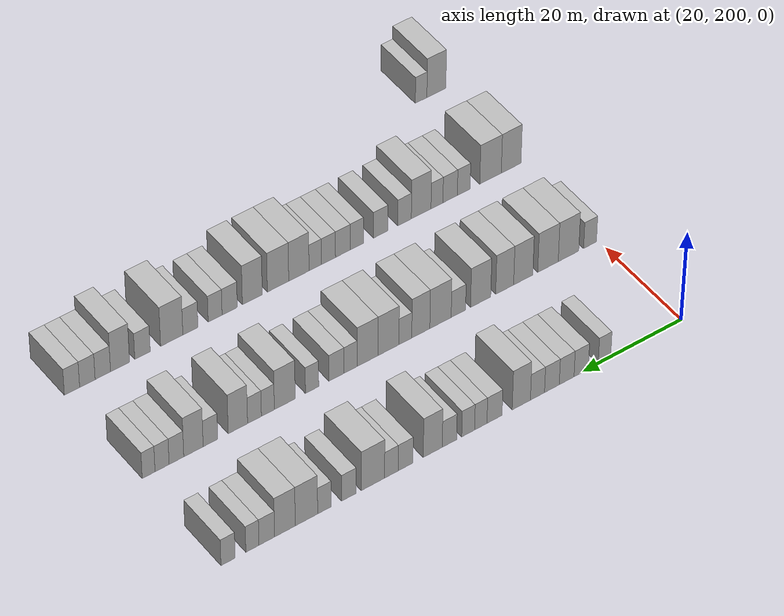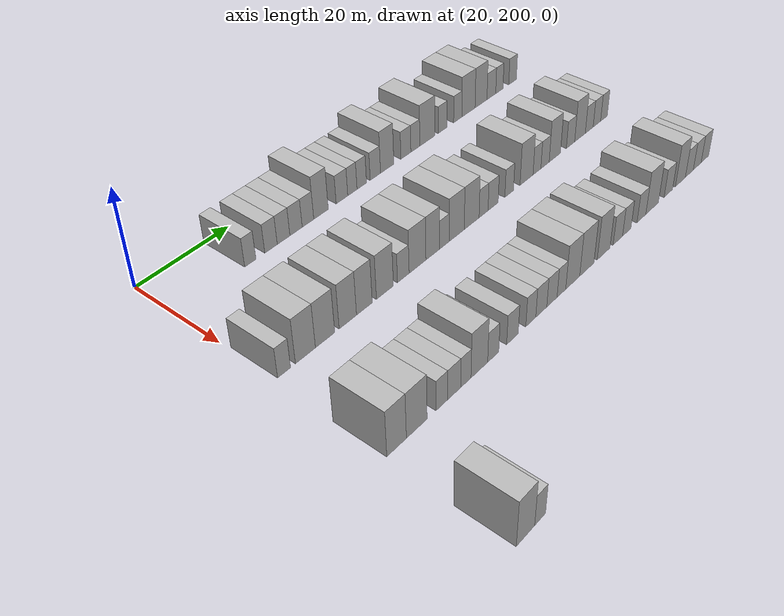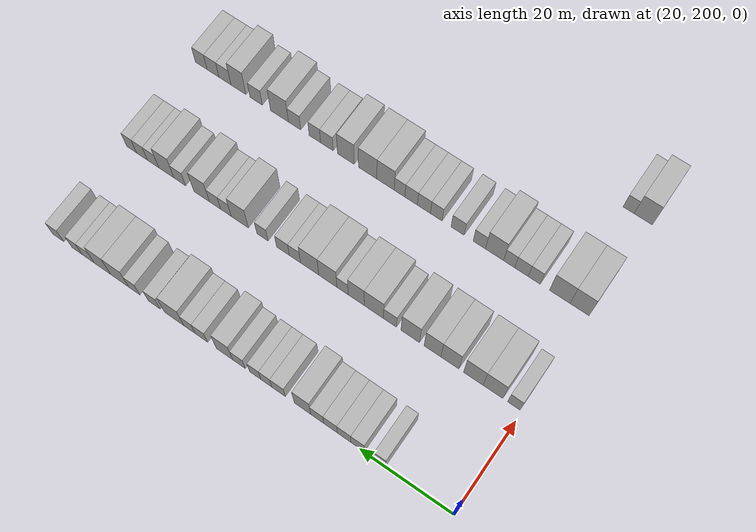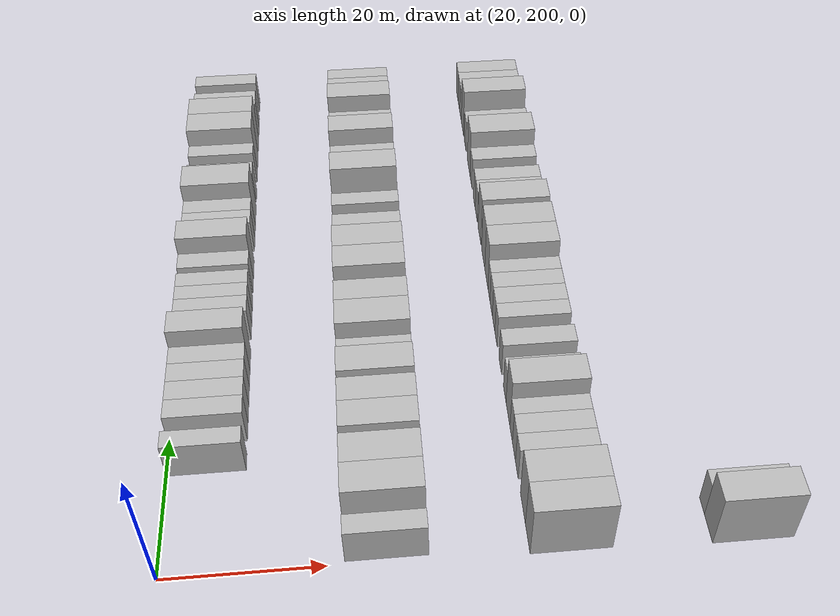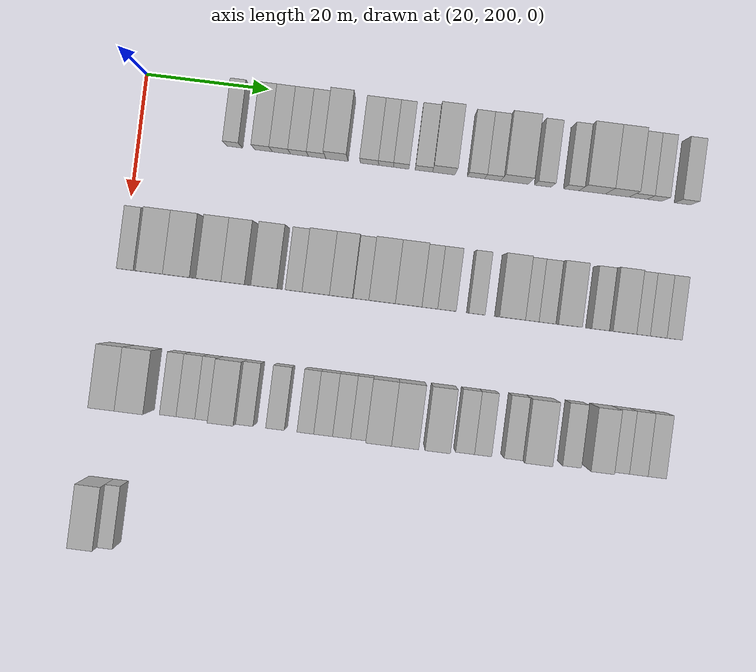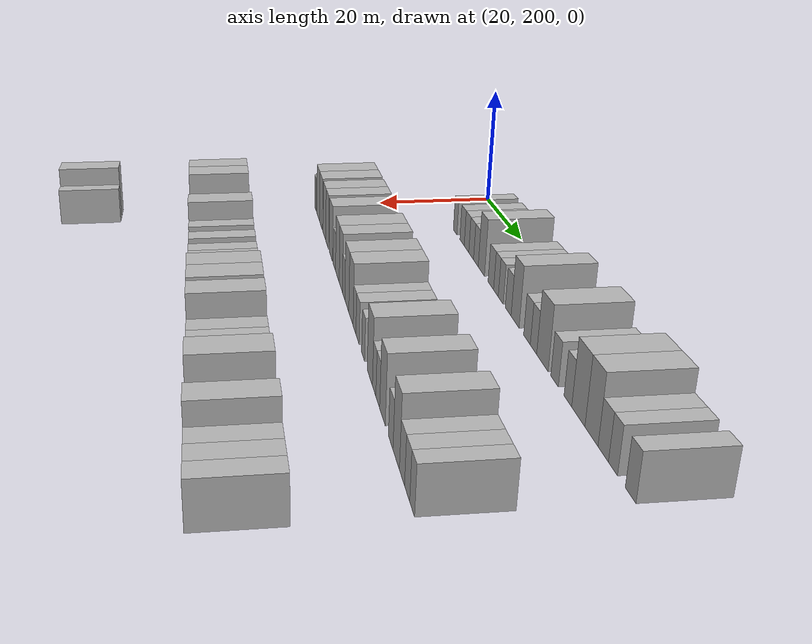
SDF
<sdf version="1.6">
 <world name="default">
  <model name="building_140">
   <static>1</static>
   <pose>25.0000 215.7087 0 0.000000 0.000000 0.000000</pose>
   <link name="link">
    <pose>0 0 3.00 0 0 0</pose>
    <collision name="collision"><geometry><box><size>10.0000 2.5268 6.0000</size></box></geometry></collision>
    <visual name="visual">
     <cast_shadows>0</cast_shadows>
     <geometry><box><size>10.0000 2.5268 6.0000</size></box></geometry>
     <material>
      <script>
       <uri>model://HANNAS_wall/materials/scripts</uri>
       <uri>model://HANNAS_wall/materials/textures</uri>
       <name>vrc/HANNAS_wall</name>
      </script>
     </material>
    </visual>
   </link>
  </model>
  <model name="building_141">
   <static>1</static>
   <pose>25.0000 220.4124 0 0.000000 0.000000 0.000000</pose>
   <link name="link">
    <pose>0 0 3.00 0 0 0</pose>
    <collision name="collision"><geometry><box><size>10.0000 2.8806 6.0000</size></box></geometry></collision>
    <visual name="visual">
     <cast_shadows>0</cast_shadows>
     <geometry><box><size>10.0000 2.8806 6.0000</size></box></geometry>
     <material>
      <script>
       <uri>model://HANNAS_wall/materials/scripts</uri>
       <uri>model://HANNAS_wall/materials/textures</uri>
       <name>vrc/HANNAS_wall</name>
      </script>
     </material>
    </visual>
   </link>
  </model>
  <model name="building_142">
   <static>1</static>
   <pose>25.0000 223.3369 0 0.000000 0.000000 0.000000</pose>
   <link name="link">
    <pose>0 0 3.00 0 0 0</pose>
    <collision name="collision"><geometry><box><size>10.0000 2.9684 6.0000</size></box></geometry></collision>
    <visual name="visual">
     <cast_shadows>0</cast_shadows>
     <geometry><box><size>10.0000 2.9684 6.0000</size></box></geometry>
     <material>
      <script>
       <uri>model://HANNAS_wall/materials/scripts</uri>
       <uri>model://HANNAS_wall/materials/textures</uri>
       <name>vrc/HANNAS_wall</name>
      </script>
     </material>
    </visual>
   </link>
  </model>
  <model name="building_143">
   <static>1</static>
   <pose>25.0000 226.2983 0 0.000000 0.000000 0.000000</pose>
   <link name="link">
    <pose>0 0 3.00 0 0 0</pose>
    <collision name="collision"><geometry><box><size>10.0000 2.9544 6.0000</size></box></geometry></collision>
    <visual name="visual">
     <cast_shadows>0</cast_shadows>
     <geometry><box><size>10.0000 2.9544 6.0000</size></box></geometry>
     <material>
      <script>
       <uri>model://HANNAS_wall/materials/scripts</uri>
       <uri>model://HANNAS_wall/materials/textures</uri>
       <name>vrc/HANNAS_wall</name>
      </script>
     </material>
    </visual>
   </link>
  </model>
  <model name="building_144">
   <static>1</static>
   <pose>25.0000 229.1850 0 0.000000 0.000000 0.000000</pose>
   <link name="link">
    <pose>0 0 3.00 0 0 0</pose>
    <collision name="collision"><geometry><box><size>10.0000 2.8190 6.0000</size></box></geometry></collision>
    <visual name="visual">
     <cast_shadows>0</cast_shadows>
     <geometry><box><size>10.0000 2.8190 6.0000</size></box></geometry>
     <material>
      <script>
       <uri>model://HANNAS_wall/materials/scripts</uri>
       <uri>model://HANNAS_wall/materials/textures</uri>
       <name>vrc/HANNAS_wall</name>
      </script>
     </material>
    </visual>
   </link>
  </model>
  <model name="building_145">
   <static>1</static>
   <pose>25.0000 232.4113 0 0.000000 0.000000 0.000000</pose>
   <link name="link">
    <pose>0 0 4.50 0 0 0</pose>
    <collision name="collision"><geometry><box><size>10.0000 3.6335 9.0000</size></box></geometry></collision>
    <visual name="visual">
     <cast_shadows>0</cast_shadows>
     <geometry><box><size>10.0000 3.6335 9.0000</size></box></geometry>
     <material>
      <script>
       <uri>model://HANNAS_wall/materials/scripts</uri>
       <uri>model://HANNAS_wall/materials/textures</uri>
       <name>vrc/HANNAS_wall</name>
      </script>
     </material>
    </visual>
   </link>
  </model>
  <model name="building_146">
   <static>1</static>
   <pose>25.0000 237.7246 0 0.000000 0.000000 0.000000</pose>
   <link name="link">
    <pose>0 0 3.00 0 0 0</pose>
    <collision name="collision"><geometry><box><size>10.0000 2.9931 6.0000</size></box></geometry></collision>
    <visual name="visual">
     <cast_shadows>0</cast_shadows>
     <geometry><box><size>10.0000 2.9931 6.0000</size></box></geometry>
     <material>
      <script>
       <uri>model://HANNAS_wall/materials/scripts</uri>
       <uri>model://HANNAS_wall/materials/textures</uri>
       <name>vrc/HANNAS_wall</name>
      </script>
     </material>
    </visual>
   </link>
  </model>
  <model name="building_147">
   <static>1</static>
   <pose>25.0000 240.4412 0 0.000000 0.000000 0.000000</pose>
   <link name="link">
    <pose>0 0 3.00 0 0 0</pose>
    <collision name="collision"><geometry><box><size>10.0000 2.4401 6.0000</size></box></geometry></collision>
    <visual name="visual">
     <cast_shadows>0</cast_shadows>
     <geometry><box><size>10.0000 2.4401 6.0000</size></box></geometry>
     <material>
      <script>
       <uri>model://HANNAS_wall/materials/scripts</uri>
       <uri>model://HANNAS_wall/materials/textures</uri>
       <name>vrc/HANNAS_wall</name>
      </script>
     </material>
    </visual>
   </link>
  </model>
  <model name="building_148">
   <static>1</static>
   <pose>25.0000 242.9227 0 0.000000 0.000000 0.000000</pose>
   <link name="link">
    <pose>0 0 3.00 0 0 0</pose>
    <collision name="collision"><geometry><box><size>10.0000 2.5229 6.0000</size></box></geometry></collision>
    <visual name="visual">
     <cast_shadows>0</cast_shadows>
     <geometry><box><size>10.0000 2.5229 6.0000</size></box></geometry>
     <material>
      <script>
       <uri>model://HANNAS_wall/materials/scripts</uri>
       <uri>model://HANNAS_wall/materials/textures</uri>
       <name>vrc/HANNAS_wall</name>
      </script>
     </material>
    </visual>
   </link>
  </model>
  <model name="building_149">
   <static>1</static>
   <pose>25.0000 246.5963 0 0.000000 0.000000 0.000000</pose>
   <link name="link">
    <pose>0 0 3.00 0 0 0</pose>
    <collision name="collision"><geometry><box><size>10.0000 2.8243 6.0000</size></box></geometry></collision>
    <visual name="visual">
     <cast_shadows>0</cast_shadows>
     <geometry><box><size>10.0000 2.8243 6.0000</size></box></geometry>
     <material>
      <script>
       <uri>model://HANNAS_wall/materials/scripts</uri>
       <uri>model://HANNAS_wall/materials/textures</uri>
       <name>vrc/HANNAS_wall</name>
      </script>
     </material>
    </visual>
   </link>
  </model>
  <model name="building_150">
   <static>1</static>
   <pose>25.0000 249.8636 0 0.000000 0.000000 0.000000</pose>
   <link name="link">
    <pose>0 0 4.50 0 0 0</pose>
    <collision name="collision"><geometry><box><size>10.0000 3.7104 9.0000</size></box></geometry></collision>
    <visual name="visual">
     <cast_shadows>0</cast_shadows>
     <geometry><box><size>10.0000 3.7104 9.0000</size></box></geometry>
     <material>
      <script>
       <uri>model://HANNAS_wall/materials/scripts</uri>
       <uri>model://HANNAS_wall/materials/textures</uri>
       <name>vrc/HANNAS_wall</name>
      </script>
     </material>
    </visual>
   </link>
  </model>
  <model name="building_151">
   <static>1</static>
   <pose>25.0000 255.1486 0 0.000000 0.000000 0.000000</pose>
   <link name="link">
    <pose>0 0 3.00 0 0 0</pose>
    <collision name="collision"><geometry><box><size>10.0000 2.8596 6.0000</size></box></geometry></collision>
    <visual name="visual">
     <cast_shadows>0</cast_shadows>
     <geometry><box><size>10.0000 2.8596 6.0000</size></box></geometry>
     <material>
      <script>
       <uri>model://HANNAS_wall/materials/scripts</uri>
       <uri>model://HANNAS_wall/materials/textures</uri>
       <name>vrc/HANNAS_wall</name>
      </script>
     </material>
    </visual>
   </link>
  </model>
  <model name="building_152">
   <static>1</static>
   <pose>25.0000 257.8966 0 0.000000 0.000000 0.000000</pose>
   <link name="link">
    <pose>0 0 3.00 0 0 0</pose>
    <collision name="collision"><geometry><box><size>10.0000 2.6362 6.0000</size></box></geometry></collision>
    <visual name="visual">
     <cast_shadows>0</cast_shadows>
     <geometry><box><size>10.0000 2.6362 6.0000</size></box></geometry>
     <material>
      <script>
       <uri>model://HANNAS_wall/materials/scripts</uri>
       <uri>model://HANNAS_wall/materials/textures</uri>
       <name>vrc/HANNAS_wall</name>
      </script>
     </material>
    </visual>
   </link>
  </model>
  <model name="building_153">
   <static>1</static>
   <pose>25.0000 261.4576 0 0.000000 0.000000 0.000000</pose>
   <link name="link">
    <pose>0 0 4.50 0 0 0</pose>
    <collision name="collision"><geometry><box><size>10.0000 4.4859 9.0000</size></box></geometry></collision>
    <visual name="visual">
     <cast_shadows>0</cast_shadows>
     <geometry><box><size>10.0000 4.4859 9.0000</size></box></geometry>
     <material>
      <script>
       <uri>model://HANNAS_wall/materials/scripts</uri>
       <uri>model://HANNAS_wall/materials/textures</uri>
       <name>vrc/HANNAS_wall</name>
      </script>
     </material>
    </visual>
   </link>
  </model>
  <model name="building_154">
   <static>1</static>
   <pose>25.0000 266.0856 0 0.000000 0.000000 0.000000</pose>
   <link name="link">
    <pose>0 0 3.00 0 0 0</pose>
    <collision name="collision"><geometry><box><size>10.0000 2.7699 6.0000</size></box></geometry></collision>
    <visual name="visual">
     <cast_shadows>0</cast_shadows>
     <geometry><box><size>10.0000 2.7699 6.0000</size></box></geometry>
     <material>
      <script>
       <uri>model://HANNAS_wall/materials/scripts</uri>
       <uri>model://HANNAS_wall/materials/textures</uri>
       <name>vrc/HANNAS_wall</name>
      </script>
     </material>
    </visual>
   </link>
  </model>
  <model name="building_155">
   <static>1</static>
   <pose>25.0000 270.7630 0 0.000000 0.000000 0.000000</pose>
   <link name="link">
    <pose>0 0 3.00 0 0 0</pose>
    <collision name="collision"><geometry><box><size>10.0000 2.5850 6.0000</size></box></geometry></collision>
    <visual name="visual">
     <cast_shadows>0</cast_shadows>
     <geometry><box><size>10.0000 2.5850 6.0000</size></box></geometry>
     <material>
      <script>
       <uri>model://HANNAS_wall/materials/scripts</uri>
       <uri>model://HANNAS_wall/materials/textures</uri>
       <name>vrc/HANNAS_wall</name>
      </script>
     </material>
    </visual>
   </link>
  </model>
  <model name="building_156">
   <static>1</static>
   <pose>25.0000 274.1829 0 0.000000 0.000000 0.000000</pose>
   <link name="link">
    <pose>0 0 4.50 0 0 0</pose>
    <collision name="collision"><geometry><box><size>10.0000 4.2548 9.0000</size></box></geometry></collision>
    <visual name="visual">
     <cast_shadows>0</cast_shadows>
     <geometry><box><size>10.0000 4.2548 9.0000</size></box></geometry>
     <material>
      <script>
       <uri>model://HANNAS_wall/materials/scripts</uri>
       <uri>model://HANNAS_wall/materials/textures</uri>
       <name>vrc/HANNAS_wall</name>
      </script>
     </material>
    </visual>
   </link>
  </model>
  <model name="building_157">
   <static>1</static>
   <pose>25.0000 278.2666 0 0.000000 0.000000 0.000000</pose>
   <link name="link">
    <pose>0 0 4.50 0 0 0</pose>
    <collision name="collision"><geometry><box><size>10.0000 3.9126 9.0000</size></box></geometry></collision>
    <visual name="visual">
     <cast_shadows>0</cast_shadows>
     <geometry><box><size>10.0000 3.9126 9.0000</size></box></geometry>
     <material>
      <script>
       <uri>model://HANNAS_wall/materials/scripts</uri>
       <uri>model://HANNAS_wall/materials/textures</uri>
       <name>vrc/HANNAS_wall</name>
      </script>
     </material>
    </visual>
   </link>
  </model>
  <model name="building_158">
   <static>1</static>
   <pose>25.0000 281.6928 0 0.000000 0.000000 0.000000</pose>
   <link name="link">
    <pose>0 0 3.00 0 0 0</pose>
    <collision name="collision"><geometry><box><size>10.0000 2.9397 6.0000</size></box></geometry></collision>
    <visual name="visual">
     <cast_shadows>0</cast_shadows>
     <geometry><box><size>10.0000 2.9397 6.0000</size></box></geometry>
     <material>
      <script>
       <uri>model://HANNAS_wall/materials/scripts</uri>
       <uri>model://HANNAS_wall/materials/textures</uri>
       <name>vrc/HANNAS_wall</name>
      </script>
     </material>
    </visual>
   </link>
  </model>
  <model name="building_159">
   <static>1</static>
   <pose>25.0000 284.3924 0 0.000000 0.000000 0.000000</pose>
   <link name="link">
    <pose>0 0 3.00 0 0 0</pose>
    <collision name="collision"><geometry><box><size>10.0000 2.4595 6.0000</size></box></geometry></collision>
    <visual name="visual">
     <cast_shadows>0</cast_shadows>
     <geometry><box><size>10.0000 2.4595 6.0000</size></box></geometry>
     <material>
      <script>
       <uri>model://HANNAS_wall/materials/scripts</uri>
       <uri>model://HANNAS_wall/materials/textures</uri>
       <name>vrc/HANNAS_wall</name>
      </script>
     </material>
    </visual>
   </link>
  </model>
  <model name="building_160">
   <static>1</static>
   <pose>25.0000 288.9512 0 0.000000 0.000000 0.000000</pose>
   <link name="link">
    <pose>0 0 3.00 0 0 0</pose>
    <collision name="collision"><geometry><box><size>10.0000 2.6580 6.0000</size></box></geometry></collision>
    <visual name="visual">
     <cast_shadows>0</cast_shadows>
     <geometry><box><size>10.0000 2.6580 6.0000</size></box></geometry>
     <material>
      <script>
       <uri>model://HANNAS_wall/materials/scripts</uri>
       <uri>model://HANNAS_wall/materials/textures</uri>
       <name>vrc/HANNAS_wall</name>
      </script>
     </material>
    </visual>
   </link>
  </model>
  <model name="building_323">
   <static>1</static>
   <pose>47.0000 201.7615 0 0.000000 0.000000 0.000000</pose>
   <link name="link">
    <pose>0 0 3.00 0 0 0</pose>
    <collision name="collision"><geometry><box><size>10.0000 2.6622 6.0000</size></box></geometry></collision>
    <visual name="visual">
     <cast_shadows>0</cast_shadows>
     <geometry><box><size>10.0000 2.6622 6.0000</size></box></geometry>
     <material>
      <script>
       <uri>model://HANNAS_wall/materials/scripts</uri>
       <uri>model://HANNAS_wall/materials/textures</uri>
       <name>vrc/HANNAS_wall</name>
      </script>
     </material>
    </visual>
   </link>
  </model>
  <model name="building_324">
   <static>1</static>
   <pose>47.0000 206.2104 0 0.000000 0.000000 0.000000</pose>
   <link name="link">
    <pose>0 0 4.50 0 0 0</pose>
    <collision name="collision"><geometry><box><size>10.0000 4.2357 9.0000</size></box></geometry></collision>
    <visual name="visual">
     <cast_shadows>0</cast_shadows>
     <geometry><box><size>10.0000 4.2357 9.0000</size></box></geometry>
     <material>
      <script>
       <uri>model://HANNAS_wall/materials/scripts</uri>
       <uri>model://HANNAS_wall/materials/textures</uri>
       <name>vrc/HANNAS_wall</name>
      </script>
     </material>
    </visual>
   </link>
  </model>
  <model name="building_325">
   <static>1</static>
   <pose>47.0000 210.4332 0 0.000000 0.000000 0.000000</pose>
   <link name="link">
    <pose>0 0 4.50 0 0 0</pose>
    <collision name="collision"><geometry><box><size>10.0000 4.2099 9.0000</size></box></geometry></collision>
    <visual name="visual">
     <cast_shadows>0</cast_shadows>
     <geometry><box><size>10.0000 4.2099 9.0000</size></box></geometry>
     <material>
      <script>
       <uri>model://HANNAS_wall/materials/scripts</uri>
       <uri>model://HANNAS_wall/materials/textures</uri>
       <name>vrc/HANNAS_wall</name>
      </script>
     </material>
    </visual>
   </link>
  </model>
  <model name="building_326">
   <static>1</static>
   <pose>47.0000 215.5032 0 0.000000 0.000000 0.000000</pose>
   <link name="link">
    <pose>0 0 4.50 0 0 0</pose>
    <collision name="collision"><geometry><box><size>10.0000 3.9301 9.0000</size></box></geometry></collision>
    <visual name="visual">
     <cast_shadows>0</cast_shadows>
     <geometry><box><size>10.0000 3.9301 9.0000</size></box></geometry>
     <material>
      <script>
       <uri>model://HANNAS_wall/materials/scripts</uri>
       <uri>model://HANNAS_wall/materials/textures</uri>
       <name>vrc/HANNAS_wall</name>
      </script>
     </material>
    </visual>
   </link>
  </model>
  <model name="building_327">
   <static>1</static>
   <pose>47.0000 219.2967 0 0.000000 0.000000 0.000000</pose>
   <link name="link">
    <pose>0 0 4.50 0 0 0</pose>
    <collision name="collision"><geometry><box><size>10.0000 3.6569 9.0000</size></box></geometry></collision>
    <visual name="visual">
     <cast_shadows>0</cast_shadows>
     <geometry><box><size>10.0000 3.6569 9.0000</size></box></geometry>
     <material>
      <script>
       <uri>model://HANNAS_wall/materials/scripts</uri>
       <uri>model://HANNAS_wall/materials/textures</uri>
       <name>vrc/HANNAS_wall</name>
      </script>
     </material>
    </visual>
   </link>
  </model>
  <model name="building_328">
   <static>1</static>
   <pose>47.0000 224.1695 0 0.000000 0.000000 0.000000</pose>
   <link name="link">
    <pose>0 0 4.50 0 0 0</pose>
    <collision name="collision"><geometry><box><size>10.0000 4.0887 9.0000</size></box></geometry></collision>
    <visual name="visual">
     <cast_shadows>0</cast_shadows>
     <geometry><box><size>10.0000 4.0887 9.0000</size></box></geometry>
     <material>
      <script>
       <uri>model://HANNAS_wall/materials/scripts</uri>
       <uri>model://HANNAS_wall/materials/textures</uri>
       <name>vrc/HANNAS_wall</name>
      </script>
     </material>
    </visual>
   </link>
  </model>
  <model name="building_329">
   <static>1</static>
   <pose>47.0000 228.6633 0 0.000000 0.000000 0.000000</pose>
   <link name="link">
    <pose>0 0 3.00 0 0 0</pose>
    <collision name="collision"><geometry><box><size>10.0000 2.8989 6.0000</size></box></geometry></collision>
    <visual name="visual">
     <cast_shadows>0</cast_shadows>
     <geometry><box><size>10.0000 2.8989 6.0000</size></box></geometry>
     <material>
      <script>
       <uri>model://HANNAS_wall/materials/scripts</uri>
       <uri>model://HANNAS_wall/materials/textures</uri>
       <name>vrc/HANNAS_wall</name>
      </script>
     </material>
    </visual>
   </link>
  </model>
  <model name="building_330">
   <static>1</static>
   <pose>47.0000 232.2511 0 0.000000 0.000000 0.000000</pose>
   <link name="link">
    <pose>0 0 4.50 0 0 0</pose>
    <collision name="collision"><geometry><box><size>10.0000 4.2766 9.0000</size></box></geometry></collision>
    <visual name="visual">
     <cast_shadows>0</cast_shadows>
     <geometry><box><size>10.0000 4.2766 9.0000</size></box></geometry>
     <material>
      <script>
       <uri>model://HANNAS_wall/materials/scripts</uri>
       <uri>model://HANNAS_wall/materials/textures</uri>
       <name>vrc/HANNAS_wall</name>
      </script>
     </material>
    </visual>
   </link>
  </model>
  <model name="building_331">
   <static>1</static>
   <pose>47.0000 236.1954 0 0.000000 0.000000 0.000000</pose>
   <link name="link">
    <pose>0 0 4.50 0 0 0</pose>
    <collision name="collision"><geometry><box><size>10.0000 3.6120 9.0000</size></box></geometry></collision>
    <visual name="visual">
     <cast_shadows>0</cast_shadows>
     <geometry><box><size>10.0000 3.6120 9.0000</size></box></geometry>
     <material>
      <script>
       <uri>model://HANNAS_wall/materials/scripts</uri>
       <uri>model://HANNAS_wall/materials/textures</uri>
       <name>vrc/HANNAS_wall</name>
      </script>
     </material>
    </visual>
   </link>
  </model>
  <model name="building_332">
   <static>1</static>
   <pose>47.0000 239.2754 0 0.000000 0.000000 0.000000</pose>
   <link name="link">
    <pose>0 0 3.00 0 0 0</pose>
    <collision name="collision"><geometry><box><size>10.0000 2.5479 6.0000</size></box></geometry></collision>
    <visual name="visual">
     <cast_shadows>0</cast_shadows>
     <geometry><box><size>10.0000 2.5479 6.0000</size></box></geometry>
     <material>
      <script>
       <uri>model://HANNAS_wall/materials/scripts</uri>
       <uri>model://HANNAS_wall/materials/textures</uri>
       <name>vrc/HANNAS_wall</name>
      </script>
     </material>
    </visual>
   </link>
  </model>
  <model name="building_333">
   <static>1</static>
   <pose>47.0000 242.6150 0 0.000000 0.000000 0.000000</pose>
   <link name="link">
    <pose>0 0 4.50 0 0 0</pose>
    <collision name="collision"><geometry><box><size>10.0000 4.1312 9.0000</size></box></geometry></collision>
    <visual name="visual">
     <cast_shadows>0</cast_shadows>
     <geometry><box><size>10.0000 4.1312 9.0000</size></box></geometry>
     <material>
      <script>
       <uri>model://HANNAS_wall/materials/scripts</uri>
       <uri>model://HANNAS_wall/materials/textures</uri>
       <name>vrc/HANNAS_wall</name>
      </script>
     </material>
    </visual>
   </link>
  </model>
  <model name="building_334">
   <static>1</static>
   <pose>47.0000 246.7603 0 0.000000 0.000000 0.000000</pose>
   <link name="link">
    <pose>0 0 4.50 0 0 0</pose>
    <collision name="collision"><geometry><box><size>10.0000 4.1595 9.0000</size></box></geometry></collision>
    <visual name="visual">
     <cast_shadows>0</cast_shadows>
     <geometry><box><size>10.0000 4.1595 9.0000</size></box></geometry>
     <material>
      <script>
       <uri>model://HANNAS_wall/materials/scripts</uri>
       <uri>model://HANNAS_wall/materials/textures</uri>
       <name>vrc/HANNAS_wall</name>
      </script>
     </material>
    </visual>
   </link>
  </model>
  <model name="building_335">
   <static>1</static>
   <pose>47.0000 250.1315 0 0.000000 0.000000 0.000000</pose>
   <link name="link">
    <pose>0 0 3.00 0 0 0</pose>
    <collision name="collision"><geometry><box><size>10.0000 2.5828 6.0000</size></box></geometry></collision>
    <visual name="visual">
     <cast_shadows>0</cast_shadows>
     <geometry><box><size>10.0000 2.5828 6.0000</size></box></geometry>
     <material>
      <script>
       <uri>model://HANNAS_wall/materials/scripts</uri>
       <uri>model://HANNAS_wall/materials/textures</uri>
       <name>vrc/HANNAS_wall</name>
      </script>
     </material>
    </visual>
   </link>
  </model>
  <model name="building_336">
   <static>1</static>
   <pose>47.0000 252.8957 0 0.000000 0.000000 0.000000</pose>
   <link name="link">
    <pose>0 0 3.00 0 0 0</pose>
    <collision name="collision"><geometry><box><size>10.0000 2.9457 6.0000</size></box></geometry></collision>
    <visual name="visual">
     <cast_shadows>0</cast_shadows>
     <geometry><box><size>10.0000 2.9457 6.0000</size></box></geometry>
     <material>
      <script>
       <uri>model://HANNAS_wall/materials/scripts</uri>
       <uri>model://HANNAS_wall/materials/textures</uri>
       <name>vrc/HANNAS_wall</name>
      </script>
     </material>
    </visual>
   </link>
  </model>
  <model name="building_337">
   <static>1</static>
   <pose>47.0000 257.6644 0 0.000000 0.000000 0.000000</pose>
   <link name="link">
    <pose>0 0 3.00 0 0 0</pose>
    <collision name="collision"><geometry><box><size>10.0000 2.5916 6.0000</size></box></geometry></collision>
    <visual name="visual">
     <cast_shadows>0</cast_shadows>
     <geometry><box><size>10.0000 2.5916 6.0000</size></box></geometry>
     <material>
      <script>
       <uri>model://HANNAS_wall/materials/scripts</uri>
       <uri>model://HANNAS_wall/materials/textures</uri>
       <name>vrc/HANNAS_wall</name>
      </script>
     </material>
    </visual>
   </link>
  </model>
  <model name="building_338">
   <static>1</static>
   <pose>47.0000 262.9833 0 0.000000 0.000000 0.000000</pose>
   <link name="link">
    <pose>0 0 4.50 0 0 0</pose>
    <collision name="collision"><geometry><box><size>10.0000 4.0463 9.0000</size></box></geometry></collision>
    <visual name="visual">
     <cast_shadows>0</cast_shadows>
     <geometry><box><size>10.0000 4.0463 9.0000</size></box></geometry>
     <material>
      <script>
       <uri>model://HANNAS_wall/materials/scripts</uri>
       <uri>model://HANNAS_wall/materials/textures</uri>
       <name>vrc/HANNAS_wall</name>
      </script>
     </material>
    </visual>
   </link>
  </model>
  <model name="building_339">
   <static>1</static>
   <pose>47.0000 266.2563 0 0.000000 0.000000 0.000000</pose>
   <link name="link">
    <pose>0 0 3.00 0 0 0</pose>
    <collision name="collision"><geometry><box><size>10.0000 2.4997 6.0000</size></box></geometry></collision>
    <visual name="visual">
     <cast_shadows>0</cast_shadows>
     <geometry><box><size>10.0000 2.4997 6.0000</size></box></geometry>
     <material>
      <script>
       <uri>model://HANNAS_wall/materials/scripts</uri>
       <uri>model://HANNAS_wall/materials/textures</uri>
       <name>vrc/HANNAS_wall</name>
      </script>
     </material>
    </visual>
   </link>
  </model>
  <model name="building_340">
   <static>1</static>
   <pose>47.0000 268.8408 0 0.000000 0.000000 0.000000</pose>
   <link name="link">
    <pose>0 0 3.00 0 0 0</pose>
    <collision name="collision"><geometry><box><size>10.0000 2.6692 6.0000</size></box></geometry></collision>
    <visual name="visual">
     <cast_shadows>0</cast_shadows>
     <geometry><box><size>10.0000 2.6692 6.0000</size></box></geometry>
     <material>
      <script>
       <uri>model://HANNAS_wall/materials/scripts</uri>
       <uri>model://HANNAS_wall/materials/textures</uri>
       <name>vrc/HANNAS_wall</name>
      </script>
     </material>
    </visual>
   </link>
  </model>
  <model name="building_341">
   <static>1</static>
   <pose>47.0000 272.0309 0 0.000000 0.000000 0.000000</pose>
   <link name="link">
    <pose>0 0 4.50 0 0 0</pose>
    <collision name="collision"><geometry><box><size>10.0000 3.7109 9.0000</size></box></geometry></collision>
    <visual name="visual">
     <cast_shadows>0</cast_shadows>
     <geometry><box><size>10.0000 3.7109 9.0000</size></box></geometry>
     <material>
      <script>
       <uri>model://HANNAS_wall/materials/scripts</uri>
       <uri>model://HANNAS_wall/materials/textures</uri>
       <name>vrc/HANNAS_wall</name>
      </script>
     </material>
    </visual>
   </link>
  </model>
  <model name="building_342">
   <static>1</static>
   <pose>47.0000 277.2834 0 0.000000 0.000000 0.000000</pose>
   <link name="link">
    <pose>0 0 3.00 0 0 0</pose>
    <collision name="collision"><geometry><box><size>10.0000 2.7942 6.0000</size></box></geometry></collision>
    <visual name="visual">
     <cast_shadows>0</cast_shadows>
     <geometry><box><size>10.0000 2.7942 6.0000</size></box></geometry>
     <material>
      <script>
       <uri>model://HANNAS_wall/materials/scripts</uri>
       <uri>model://HANNAS_wall/materials/textures</uri>
       <name>vrc/HANNAS_wall</name>
      </script>
     </material>
    </visual>
   </link>
  </model>
  <model name="building_343">
   <static>1</static>
   <pose>47.0000 280.5263 0 0.000000 0.000000 0.000000</pose>
   <link name="link">
    <pose>0 0 4.50 0 0 0</pose>
    <collision name="collision"><geometry><box><size>10.0000 3.6915 9.0000</size></box></geometry></collision>
    <visual name="visual">
     <cast_shadows>0</cast_shadows>
     <geometry><box><size>10.0000 3.6915 9.0000</size></box></geometry>
     <material>
      <script>
       <uri>model://HANNAS_wall/materials/scripts</uri>
       <uri>model://HANNAS_wall/materials/textures</uri>
       <name>vrc/HANNAS_wall</name>
      </script>
     </material>
    </visual>
   </link>
  </model>
  <model name="building_344">
   <static>1</static>
   <pose>47.0000 283.7608 0 0.000000 0.000000 0.000000</pose>
   <link name="link">
    <pose>0 0 3.00 0 0 0</pose>
    <collision name="collision"><geometry><box><size>10.0000 2.7774 6.0000</size></box></geometry></collision>
    <visual name="visual">
     <cast_shadows>0</cast_shadows>
     <geometry><box><size>10.0000 2.7774 6.0000</size></box></geometry>
     <material>
      <script>
       <uri>model://HANNAS_wall/materials/scripts</uri>
       <uri>model://HANNAS_wall/materials/textures</uri>
       <name>vrc/HANNAS_wall</name>
      </script>
     </material>
    </visual>
   </link>
  </model>
  <model name="building_345">
   <static>1</static>
   <pose>47.0000 286.4825 0 0.000000 0.000000 0.000000</pose>
   <link name="link">
    <pose>0 0 3.00 0 0 0</pose>
    <collision name="collision"><geometry><box><size>10.0000 2.6661 6.0000</size></box></geometry></collision>
    <visual name="visual">
     <cast_shadows>0</cast_shadows>
     <geometry><box><size>10.0000 2.6661 6.0000</size></box></geometry>
     <material>
      <script>
       <uri>model://HANNAS_wall/materials/scripts</uri>
       <uri>model://HANNAS_wall/materials/textures</uri>
       <name>vrc/HANNAS_wall</name>
      </script>
     </material>
    </visual>
   </link>
  </model>
  <model name="building_346">
   <static>1</static>
   <pose>47.0000 289.0230 0 0.000000 0.000000 0.000000</pose>
   <link name="link">
    <pose>0 0 3.00 0 0 0</pose>
    <collision name="collision"><geometry><box><size>10.0000 2.4149 6.0000</size></box></geometry></collision>
    <visual name="visual">
     <cast_shadows>0</cast_shadows>
     <geometry><box><size>10.0000 2.4149 6.0000</size></box></geometry>
     <material>
      <script>
       <uri>model://HANNAS_wall/materials/scripts</uri>
       <uri>model://HANNAS_wall/materials/textures</uri>
       <name>vrc/HANNAS_wall</name>
      </script>
     </material>
    </visual>
   </link>
  </model>
  <model name="building_518">
   <static>1</static>
   <pose>69.0000 201.5197 0 0.000000 0.000000 0.000000</pose>
   <link name="link">
    <pose>0 0 4.50 0 0 0</pose>
    <collision name="collision"><geometry><box><size>10.0000 4.1051 9.0000</size></box></geometry></collision>
    <visual name="visual">
     <cast_shadows>0</cast_shadows>
     <geometry><box><size>10.0000 4.1051 9.0000</size></box></geometry>
     <material>
      <script>
       <uri>model://HANNAS_wall/materials/scripts</uri>
       <uri>model://HANNAS_wall/materials/textures</uri>
       <name>vrc/HANNAS_wall</name>
      </script>
     </material>
    </visual>
   </link>
  </model>
  <model name="building_519">
   <static>1</static>
   <pose>69.0000 205.8114 0 0.000000 0.000000 0.000000</pose>
   <link name="link">
    <pose>0 0 4.50 0 0 0</pose>
    <collision name="collision"><geometry><box><size>10.0000 4.4785 9.0000</size></box></geometry></collision>
    <visual name="visual">
     <cast_shadows>0</cast_shadows>
     <geometry><box><size>10.0000 4.4785 9.0000</size></box></geometry>
     <material>
      <script>
       <uri>model://HANNAS_wall/materials/scripts</uri>
       <uri>model://HANNAS_wall/materials/textures</uri>
       <name>vrc/HANNAS_wall</name>
      </script>
     </material>
    </visual>
   </link>
  </model>
  <model name="building_520">
   <static>1</static>
   <pose>69.0000 211.3674 0 0.000000 0.000000 0.000000</pose>
   <link name="link">
    <pose>0 0 3.00 0 0 0</pose>
    <collision name="collision"><geometry><box><size>10.0000 2.6334 6.0000</size></box></geometry></collision>
    <visual name="visual">
     <cast_shadows>0</cast_shadows>
     <geometry><box><size>10.0000 2.6334 6.0000</size></box></geometry>
     <material>
      <script>
       <uri>model://HANNAS_wall/materials/scripts</uri>
       <uri>model://HANNAS_wall/materials/textures</uri>
       <name>vrc/HANNAS_wall</name>
      </script>
     </material>
    </visual>
   </link>
  </model>
  <model name="building_521">
   <static>1</static>
   <pose>69.0000 214.1744 0 0.000000 0.000000 0.000000</pose>
   <link name="link">
    <pose>0 0 3.00 0 0 0</pose>
    <collision name="collision"><geometry><box><size>10.0000 2.9806 6.0000</size></box></geometry></collision>
    <visual name="visual">
     <cast_shadows>0</cast_shadows>
     <geometry><box><size>10.0000 2.9806 6.0000</size></box></geometry>
     <material>
      <script>
       <uri>model://HANNAS_wall/materials/scripts</uri>
       <uri>model://HANNAS_wall/materials/textures</uri>
       <name>vrc/HANNAS_wall</name>
      </script>
     </material>
    </visual>
   </link>
  </model>
  <model name="building_522">
   <static>1</static>
   <pose>69.0000 216.8899 0 0.000000 0.000000 0.000000</pose>
   <link name="link">
    <pose>0 0 3.00 0 0 0</pose>
    <collision name="collision"><geometry><box><size>10.0000 2.4504 6.0000</size></box></geometry></collision>
    <visual name="visual">
     <cast_shadows>0</cast_shadows>
     <geometry><box><size>10.0000 2.4504 6.0000</size></box></geometry>
     <material>
      <script>
       <uri>model://HANNAS_wall/materials/scripts</uri>
       <uri>model://HANNAS_wall/materials/textures</uri>
       <name>vrc/HANNAS_wall</name>
      </script>
     </material>
    </visual>
   </link>
  </model>
  <model name="building_523">
   <static>1</static>
   <pose>69.0000 220.1304 0 0.000000 0.000000 0.000000</pose>
   <link name="link">
    <pose>0 0 4.50 0 0 0</pose>
    <collision name="collision"><geometry><box><size>10.0000 4.0305 9.0000</size></box></geometry></collision>
    <visual name="visual">
     <cast_shadows>0</cast_shadows>
     <geometry><box><size>10.0000 4.0305 9.0000</size></box></geometry>
     <material>
      <script>
       <uri>model://HANNAS_wall/materials/scripts</uri>
       <uri>model://HANNAS_wall/materials/textures</uri>
       <name>vrc/HANNAS_wall</name>
      </script>
     </material>
    </visual>
   </link>
  </model>
  <model name="building_524">
   <static>1</static>
   <pose>69.0000 223.5245 0 0.000000 0.000000 0.000000</pose>
   <link name="link">
    <pose>0 0 3.00 0 0 0</pose>
    <collision name="collision"><geometry><box><size>10.0000 2.7577 6.0000</size></box></geometry></collision>
    <visual name="visual">
     <cast_shadows>0</cast_shadows>
     <geometry><box><size>10.0000 2.7577 6.0000</size></box></geometry>
     <material>
      <script>
       <uri>model://HANNAS_wall/materials/scripts</uri>
       <uri>model://HANNAS_wall/materials/textures</uri>
       <name>vrc/HANNAS_wall</name>
      </script>
     </material>
    </visual>
   </link>
  </model>
  <model name="building_525">
   <static>1</static>
   <pose>69.0000 228.3861 0 0.000000 0.000000 0.000000</pose>
   <link name="link">
    <pose>0 0 3.00 0 0 0</pose>
    <collision name="collision"><geometry><box><size>10.0000 2.9655 6.0000</size></box></geometry></collision>
    <visual name="visual">
     <cast_shadows>0</cast_shadows>
     <geometry><box><size>10.0000 2.9655 6.0000</size></box></geometry>
     <material>
      <script>
       <uri>model://HANNAS_wall/materials/scripts</uri>
       <uri>model://HANNAS_wall/materials/textures</uri>
       <name>vrc/HANNAS_wall</name>
      </script>
     </material>
    </visual>
   </link>
  </model>
  <model name="building_526">
   <static>1</static>
   <pose>69.0000 233.1982 0 0.000000 0.000000 0.000000</pose>
   <link name="link">
    <pose>0 0 3.00 0 0 0</pose>
    <collision name="collision"><geometry><box><size>10.0000 2.6587 6.0000</size></box></geometry></collision>
    <visual name="visual">
     <cast_shadows>0</cast_shadows>
     <geometry><box><size>10.0000 2.6587 6.0000</size></box></geometry>
     <material>
      <script>
       <uri>model://HANNAS_wall/materials/scripts</uri>
       <uri>model://HANNAS_wall/materials/textures</uri>
       <name>vrc/HANNAS_wall</name>
      </script>
     </material>
    </visual>
   </link>
  </model>
  <model name="building_527">
   <static>1</static>
   <pose>69.0000 236.0247 0 0.000000 0.000000 0.000000</pose>
   <link name="link">
    <pose>0 0 3.00 0 0 0</pose>
    <collision name="collision"><geometry><box><size>10.0000 2.9942 6.0000</size></box></geometry></collision>
    <visual name="visual">
     <cast_shadows>0</cast_shadows>
     <geometry><box><size>10.0000 2.9942 6.0000</size></box></geometry>
     <material>
      <script>
       <uri>model://HANNAS_wall/materials/scripts</uri>
       <uri>model://HANNAS_wall/materials/textures</uri>
       <name>vrc/HANNAS_wall</name>
      </script>
     </material>
    </visual>
   </link>
  </model>
  <model name="building_528">
   <static>1</static>
   <pose>69.0000 238.9471 0 0.000000 0.000000 0.000000</pose>
   <link name="link">
    <pose>0 0 3.00 0 0 0</pose>
    <collision name="collision"><geometry><box><size>10.0000 2.8506 6.0000</size></box></geometry></collision>
    <visual name="visual">
     <cast_shadows>0</cast_shadows>
     <geometry><box><size>10.0000 2.8506 6.0000</size></box></geometry>
     <material>
      <script>
       <uri>model://HANNAS_wall/materials/scripts</uri>
       <uri>model://HANNAS_wall/materials/textures</uri>
       <name>vrc/HANNAS_wall</name>
      </script>
     </material>
    </visual>
   </link>
  </model>
  <model name="building_529">
   <static>1</static>
   <pose>69.0000 241.6034 0 0.000000 0.000000 0.000000</pose>
   <link name="link">
    <pose>0 0 3.00 0 0 0</pose>
    <collision name="collision"><geometry><box><size>10.0000 2.4619 6.0000</size></box></geometry></collision>
    <visual name="visual">
     <cast_shadows>0</cast_shadows>
     <geometry><box><size>10.0000 2.4619 6.0000</size></box></geometry>
     <material>
      <script>
       <uri>model://HANNAS_wall/materials/scripts</uri>
       <uri>model://HANNAS_wall/materials/textures</uri>
       <name>vrc/HANNAS_wall</name>
      </script>
     </material>
    </visual>
   </link>
  </model>
  <model name="building_530">
   <static>1</static>
   <pose>69.0000 244.8601 0 0.000000 0.000000 0.000000</pose>
   <link name="link">
    <pose>0 0 4.50 0 0 0</pose>
    <collision name="collision"><geometry><box><size>10.0000 4.0514 9.0000</size></box></geometry></collision>
    <visual name="visual">
     <cast_shadows>0</cast_shadows>
     <geometry><box><size>10.0000 4.0514 9.0000</size></box></geometry>
     <material>
      <script>
       <uri>model://HANNAS_wall/materials/scripts</uri>
       <uri>model://HANNAS_wall/materials/textures</uri>
       <name>vrc/HANNAS_wall</name>
      </script>
     </material>
    </visual>
   </link>
  </model>
  <model name="building_531">
   <static>1</static>
   <pose>69.0000 249.0082 0 0.000000 0.000000 0.000000</pose>
   <link name="link">
    <pose>0 0 4.50 0 0 0</pose>
    <collision name="collision"><geometry><box><size>10.0000 4.2448 9.0000</size></box></geometry></collision>
    <visual name="visual">
     <cast_shadows>0</cast_shadows>
     <geometry><box><size>10.0000 4.2448 9.0000</size></box></geometry>
     <material>
      <script>
       <uri>model://HANNAS_wall/materials/scripts</uri>
       <uri>model://HANNAS_wall/materials/textures</uri>
       <name>vrc/HANNAS_wall</name>
      </script>
     </material>
    </visual>
   </link>
  </model>
  <model name="building_532">
   <static>1</static>
   <pose>69.0000 254.0973 0 0.000000 0.000000 0.000000</pose>
   <link name="link">
    <pose>0 0 4.50 0 0 0</pose>
    <collision name="collision"><geometry><box><size>10.0000 3.9335 9.0000</size></box></geometry></collision>
    <visual name="visual">
     <cast_shadows>0</cast_shadows>
     <geometry><box><size>10.0000 3.9335 9.0000</size></box></geometry>
     <material>
      <script>
       <uri>model://HANNAS_wall/materials/scripts</uri>
       <uri>model://HANNAS_wall/materials/textures</uri>
       <name>vrc/HANNAS_wall</name>
      </script>
     </material>
    </visual>
   </link>
  </model>
  <model name="building_533">
   <static>1</static>
   <pose>69.0000 258.5628 0 0.000000 0.000000 0.000000</pose>
   <link name="link">
    <pose>0 0 3.00 0 0 0</pose>
    <collision name="collision"><geometry><box><size>10.0000 2.9976 6.0000</size></box></geometry></collision>
    <visual name="visual">
     <cast_shadows>0</cast_shadows>
     <geometry><box><size>10.0000 2.9976 6.0000</size></box></geometry>
     <material>
      <script>
       <uri>model://HANNAS_wall/materials/scripts</uri>
       <uri>model://HANNAS_wall/materials/textures</uri>
       <name>vrc/HANNAS_wall</name>
      </script>
     </material>
    </visual>
   </link>
  </model>
  <model name="building_534">
   <static>1</static>
   <pose>69.0000 261.4199 0 0.000000 0.000000 0.000000</pose>
   <link name="link">
    <pose>0 0 3.00 0 0 0</pose>
    <collision name="collision"><geometry><box><size>10.0000 2.7165 6.0000</size></box></geometry></collision>
    <visual name="visual">
     <cast_shadows>0</cast_shadows>
     <geometry><box><size>10.0000 2.7165 6.0000</size></box></geometry>
     <material>
      <script>
       <uri>model://HANNAS_wall/materials/scripts</uri>
       <uri>model://HANNAS_wall/materials/textures</uri>
       <name>vrc/HANNAS_wall</name>
      </script>
     </material>
    </visual>
   </link>
  </model>
  <model name="building_535">
   <static>1</static>
   <pose>69.0000 266.2532 0 0.000000 0.000000 0.000000</pose>
   <link name="link">
    <pose>0 0 3.00 0 0 0</pose>
    <collision name="collision"><geometry><box><size>10.0000 2.9499 6.0000</size></box></geometry></collision>
    <visual name="visual">
     <cast_shadows>0</cast_shadows>
     <geometry><box><size>10.0000 2.9499 6.0000</size></box></geometry>
     <material>
      <script>
       <uri>model://HANNAS_wall/materials/scripts</uri>
       <uri>model://HANNAS_wall/materials/textures</uri>
       <name>vrc/HANNAS_wall</name>
      </script>
     </material>
    </visual>
   </link>
  </model>
  <model name="building_536">
   <static>1</static>
   <pose>69.0000 269.8902 0 0.000000 0.000000 0.000000</pose>
   <link name="link">
    <pose>0 0 4.50 0 0 0</pose>
    <collision name="collision"><geometry><box><size>10.0000 4.3241 9.0000</size></box></geometry></collision>
    <visual name="visual">
     <cast_shadows>0</cast_shadows>
     <geometry><box><size>10.0000 4.3241 9.0000</size></box></geometry>
     <material>
      <script>
       <uri>model://HANNAS_wall/materials/scripts</uri>
       <uri>model://HANNAS_wall/materials/textures</uri>
       <name>vrc/HANNAS_wall</name>
      </script>
     </material>
    </visual>
   </link>
  </model>
  <model name="building_537">
   <static>1</static>
   <pose>69.0000 275.5471 0 0.000000 0.000000 0.000000</pose>
   <link name="link">
    <pose>0 0 3.00 0 0 0</pose>
    <collision name="collision"><geometry><box><size>10.0000 2.9898 6.0000</size></box></geometry></collision>
    <visual name="visual">
     <cast_shadows>0</cast_shadows>
     <geometry><box><size>10.0000 2.9898 6.0000</size></box></geometry>
     <material>
      <script>
       <uri>model://HANNAS_wall/materials/scripts</uri>
       <uri>model://HANNAS_wall/materials/textures</uri>
       <name>vrc/HANNAS_wall</name>
      </script>
     </material>
    </visual>
   </link>
  </model>
  <model name="building_538">
   <static>1</static>
   <pose>69.0000 279.8684 0 0.000000 0.000000 0.000000</pose>
   <link name="link">
    <pose>0 0 4.50 0 0 0</pose>
    <collision name="collision"><geometry><box><size>10.0000 3.6527 9.0000</size></box></geometry></collision>
    <visual name="visual">
     <cast_shadows>0</cast_shadows>
     <geometry><box><size>10.0000 3.6527 9.0000</size></box></geometry>
     <material>
      <script>
       <uri>model://HANNAS_wall/materials/scripts</uri>
       <uri>model://HANNAS_wall/materials/textures</uri>
       <name>vrc/HANNAS_wall</name>
      </script>
     </material>
    </visual>
   </link>
  </model>
  <model name="building_539">
   <static>1</static>
   <pose>69.0000 283.1731 0 0.000000 0.000000 0.000000</pose>
   <link name="link">
    <pose>0 0 3.00 0 0 0</pose>
    <collision name="collision"><geometry><box><size>10.0000 2.9565 6.0000</size></box></geometry></collision>
    <visual name="visual">
     <cast_shadows>0</cast_shadows>
     <geometry><box><size>10.0000 2.9565 6.0000</size></box></geometry>
     <material>
      <script>
       <uri>model://HANNAS_wall/materials/scripts</uri>
       <uri>model://HANNAS_wall/materials/textures</uri>
       <name>vrc/HANNAS_wall</name>
      </script>
     </material>
    </visual>
   </link>
  </model>
  <model name="building_540">
   <static>1</static>
   <pose>69.0000 286.1300 0 0.000000 0.000000 0.000000</pose>
   <link name="link">
    <pose>0 0 3.00 0 0 0</pose>
    <collision name="collision"><geometry><box><size>10.0000 2.9574 6.0000</size></box></geometry></collision>
    <visual name="visual">
     <cast_shadows>0</cast_shadows>
     <geometry><box><size>10.0000 2.9574 6.0000</size></box></geometry>
     <material>
      <script>
       <uri>model://HANNAS_wall/materials/scripts</uri>
       <uri>model://HANNAS_wall/materials/textures</uri>
       <name>vrc/HANNAS_wall</name>
      </script>
     </material>
    </visual>
   </link>
  </model>
  <model name="building_541">
   <static>1</static>
   <pose>69.0000 289.0599 0 0.000000 0.000000 0.000000</pose>
   <link name="link">
    <pose>0 0 3.00 0 0 0</pose>
    <collision name="collision"><geometry><box><size>10.0000 2.9024 6.0000</size></box></geometry></collision>
    <visual name="visual">
     <cast_shadows>0</cast_shadows>
     <geometry><box><size>10.0000 2.9024 6.0000</size></box></geometry>
     <material>
      <script>
       <uri>model://HANNAS_wall/materials/scripts</uri>
       <uri>model://HANNAS_wall/materials/textures</uri>
       <name>vrc/HANNAS_wall</name>
      </script>
     </material>
    </visual>
   </link>
  </model>
  <model name="building_714">
   <static>1</static>
   <pose>91.0000 200.9390 0 0.000000 0.000000 0.000000</pose>
   <link name="link">
    <pose>0 0 4.50 0 0 0</pose>
    <collision name="collision"><geometry><box><size>10.0000 3.9889 9.0000</size></box></geometry></collision>
    <visual name="visual">
     <cast_shadows>0</cast_shadows>
     <geometry><box><size>10.0000 3.9889 9.0000</size></box></geometry>
     <material>
      <script>
       <uri>model://HANNAS_wall/materials/scripts</uri>
       <uri>model://HANNAS_wall/materials/textures</uri>
       <name>vrc/HANNAS_wall</name>
      </script>
     </material>
    </visual>
   </link>
  </model>
  <model name="building_715">
   <static>1</static>
   <pose>91.0000 204.1486 0 0.000000 0.000000 0.000000</pose>
   <link name="link">
    <pose>0 0 3.00 0 0 0</pose>
    <collision name="collision"><geometry><box><size>10.0000 2.4303 6.0000</size></box></geometry></collision>
    <visual name="visual">
     <cast_shadows>0</cast_shadows>
     <geometry><box><size>10.0000 2.4303 6.0000</size></box></geometry>
     <material>
      <script>
       <uri>model://HANNAS_wall/materials/scripts</uri>
       <uri>model://HANNAS_wall/materials/textures</uri>
       <name>vrc/HANNAS_wall</name>
      </script>
     </material>
    </visual>
   </link>
  </model>
 </world>
</sdf>
